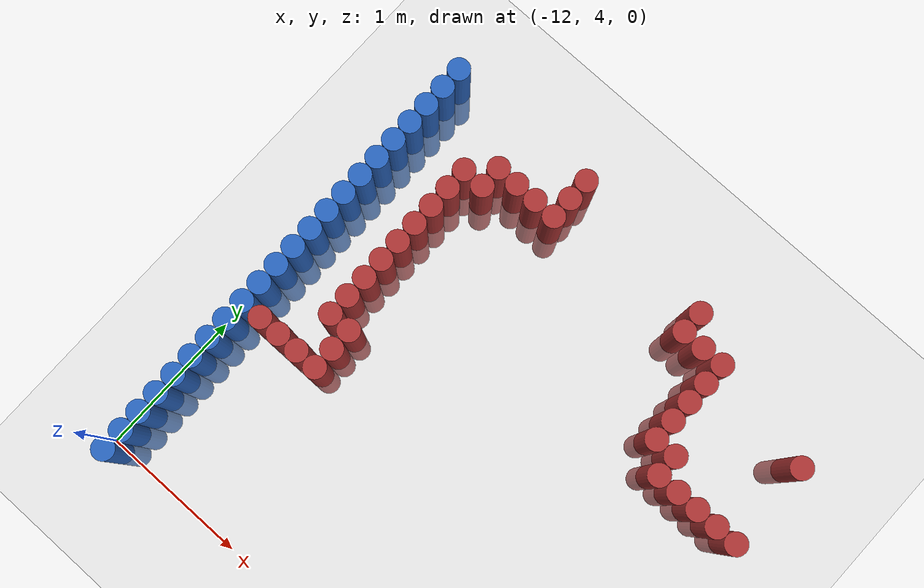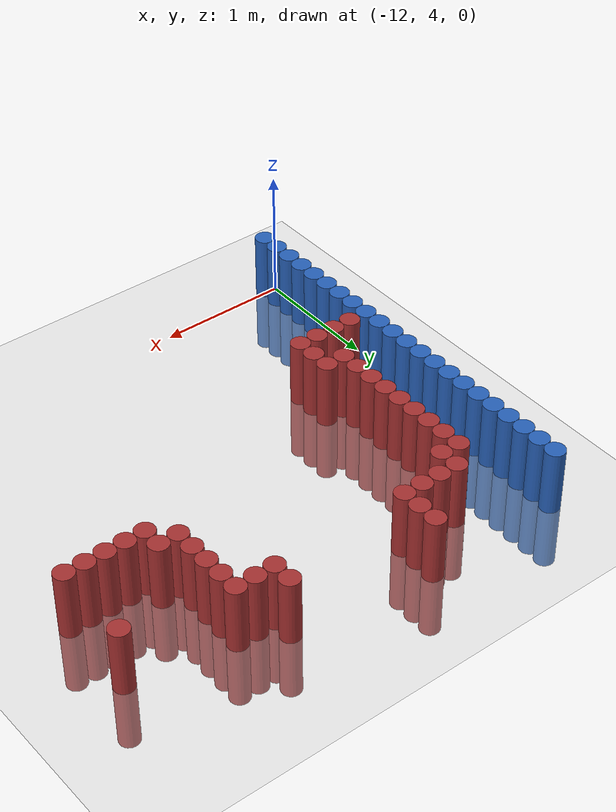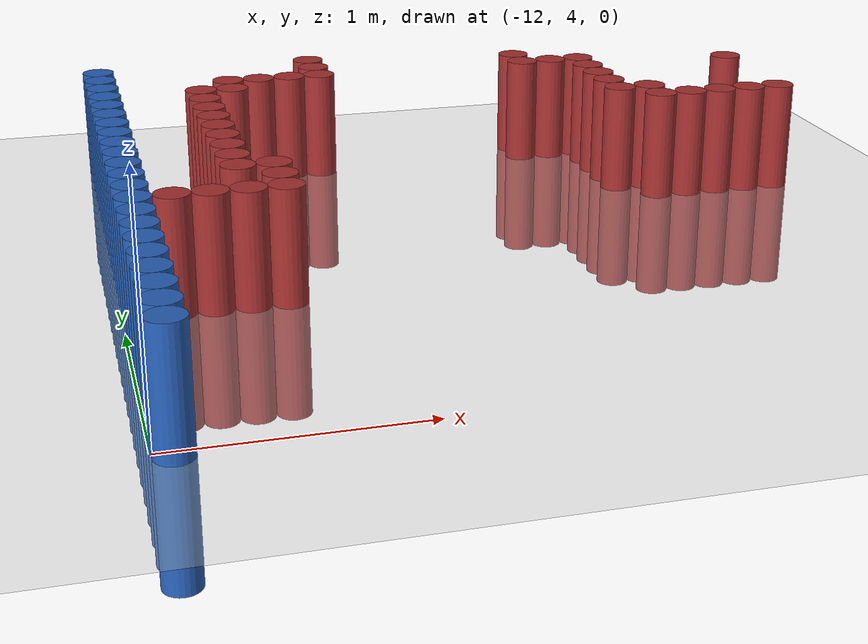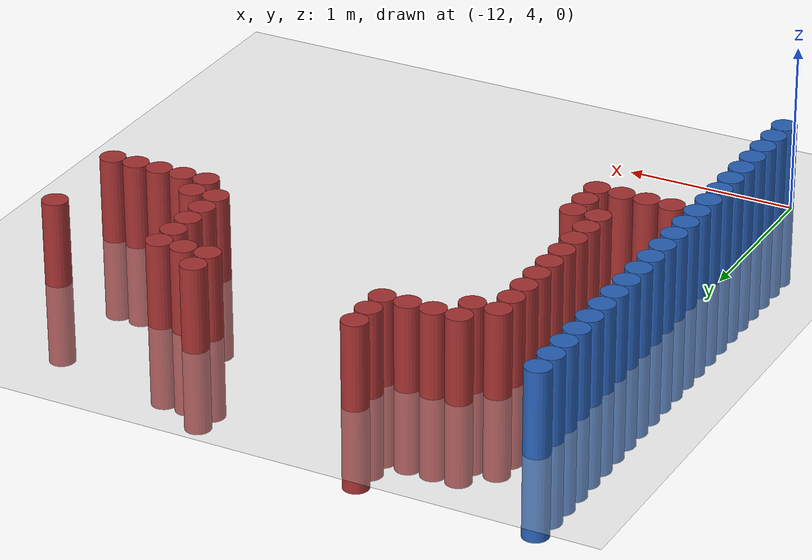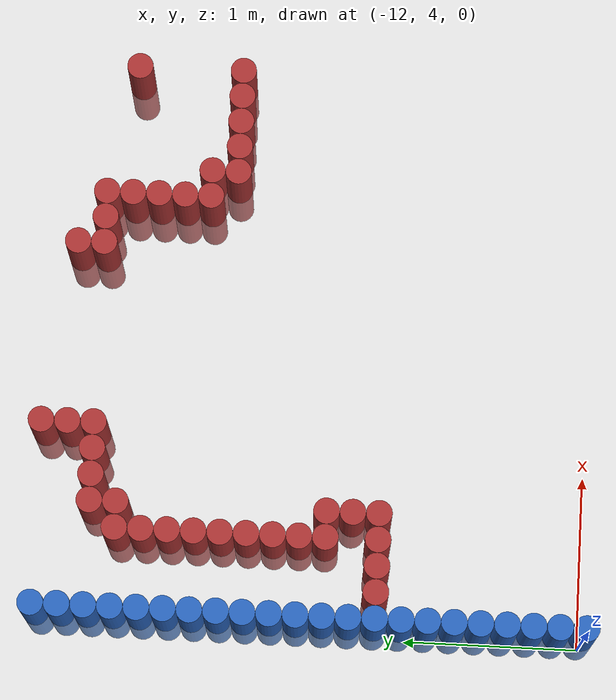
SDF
<sdf version="1.6">
 <world name="default">
  <model name="ground_plane">
   <static>1</static>
   <link name="link">
    <collision name="collision">
     <geometry><plane><normal>0 0 1</normal><size>100 100</size></plane></geometry>
     <surface><friction><ode><mu>100</mu><mu2>50</mu2></ode></friction></surface>
    </collision>
    <visual name="visual">
     <cast_shadows>0</cast_shadows>
     <geometry><plane><normal>0 0 1</normal><size>100 100</size></plane></geometry>
     <material>
      <script><uri>file://media/materials/scripts/gazebo.material</uri><name>Gazebo/Grey</name></script>
     </material>
    </visual>
   </link>
  </model>
  <model name="unit_cylinder_130">
   <static>1</static>
   <pose>-11.925 3.975 0 0 -0 0</pose>
   <link name="link">
    <inertial>
     <mass>1</mass>
     <inertia><ixx>0.145833</ixx><ixy>0</ixy><ixz>0</ixz><iyy>0.145833</iyy><iyz>0</iyz><izz>0.125</izz></inertia>
    </inertial>
    <collision name="collision">
     <geometry><cylinder><radius>0.075</radius><length>1</length></cylinder></geometry>
    </collision>
    <visual name="visual">
     <geometry><cylinder><radius>0.075</radius><length>1</length></cylinder></geometry>
     <material><ambient>0.152 0.379 0.72 1</ambient><diffuse>0.152 0.379 0.72 1</diffuse></material>
     <material>
      <script><name>Gazebo/Grey</name><uri>file://media/materials/scripts/gazebo.material</uri></script>
     </material>
    </visual>
   </link>
  </model>
  <model name="unit_cylinder_132">
   <static>1</static>
   <pose>-11.925 4.125 0 0 -0 0</pose>
   <link name="link">
    <inertial>
     <mass>1</mass>
     <inertia><ixx>0.145833</ixx><ixy>0</ixy><ixz>0</ixz><iyy>0.145833</iyy><iyz>0</iyz><izz>0.125</izz></inertia>
    </inertial>
    <collision name="collision">
     <geometry><cylinder><radius>0.075</radius><length>1</length></cylinder></geometry>
    </collision>
    <visual name="visual">
     <geometry><cylinder><radius>0.075</radius><length>1</length></cylinder></geometry>
     <material><ambient>0.152 0.379 0.72 1</ambient><diffuse>0.152 0.379 0.72 1</diffuse></material>
     <material>
      <script><name>Gazebo/Grey</name><uri>file://media/materials/scripts/gazebo.material</uri></script>
     </material>
    </visual>
   </link>
  </model>
  <model name="unit_cylinder_134">
   <static>1</static>
   <pose>-11.925 4.275 0 0 -0 0</pose>
   <link name="link">
    <inertial>
     <mass>1</mass>
     <inertia><ixx>0.145833</ixx><ixy>0</ixy><ixz>0</ixz><iyy>0.145833</iyy><iyz>0</iyz><izz>0.125</izz></inertia>
    </inertial>
    <collision name="collision">
     <geometry><cylinder><radius>0.075</radius><length>1</length></cylinder></geometry>
    </collision>
    <visual name="visual">
     <geometry><cylinder><radius>0.075</radius><length>1</length></cylinder></geometry>
     <material><ambient>0.152 0.379 0.72 1</ambient><diffuse>0.152 0.379 0.72 1</diffuse></material>
     <material>
      <script><name>Gazebo/Grey</name><uri>file://media/materials/scripts/gazebo.material</uri></script>
     </material>
    </visual>
   </link>
  </model>
  <model name="unit_cylinder_136">
   <static>1</static>
   <pose>-11.925 4.425 0 0 -0 0</pose>
   <link name="link">
    <inertial>
     <mass>1</mass>
     <inertia><ixx>0.145833</ixx><ixy>0</ixy><ixz>0</ixz><iyy>0.145833</iyy><iyz>0</iyz><izz>0.125</izz></inertia>
    </inertial>
    <collision name="collision">
     <geometry><cylinder><radius>0.075</radius><length>1</length></cylinder></geometry>
    </collision>
    <visual name="visual">
     <geometry><cylinder><radius>0.075</radius><length>1</length></cylinder></geometry>
     <material><ambient>0.152 0.379 0.72 1</ambient><diffuse>0.152 0.379 0.72 1</diffuse></material>
     <material>
      <script><name>Gazebo/Grey</name><uri>file://media/materials/scripts/gazebo.material</uri></script>
     </material>
    </visual>
   </link>
  </model>
  <model name="unit_cylinder_138">
   <static>1</static>
   <pose>-11.925 4.575 0 0 -0 0</pose>
   <link name="link">
    <inertial>
     <mass>1</mass>
     <inertia><ixx>0.145833</ixx><ixy>0</ixy><ixz>0</ixz><iyy>0.145833</iyy><iyz>0</iyz><izz>0.125</izz></inertia>
    </inertial>
    <collision name="collision">
     <geometry><cylinder><radius>0.075</radius><length>1</length></cylinder></geometry>
    </collision>
    <visual name="visual">
     <geometry><cylinder><radius>0.075</radius><length>1</length></cylinder></geometry>
     <material><ambient>0.152 0.379 0.72 1</ambient><diffuse>0.152 0.379 0.72 1</diffuse></material>
     <material>
      <script><name>Gazebo/Grey</name><uri>file://media/materials/scripts/gazebo.material</uri></script>
     </material>
    </visual>
   </link>
  </model>
  <model name="unit_cylinder_140">
   <static>1</static>
   <pose>-11.925 4.725 0 0 -0 0</pose>
   <link name="link">
    <inertial>
     <mass>1</mass>
     <inertia><ixx>0.145833</ixx><ixy>0</ixy><ixz>0</ixz><iyy>0.145833</iyy><iyz>0</iyz><izz>0.125</izz></inertia>
    </inertial>
    <collision name="collision">
     <geometry><cylinder><radius>0.075</radius><length>1</length></cylinder></geometry>
    </collision>
    <visual name="visual">
     <geometry><cylinder><radius>0.075</radius><length>1</length></cylinder></geometry>
     <material><ambient>0.152 0.379 0.72 1</ambient><diffuse>0.152 0.379 0.72 1</diffuse></material>
     <material>
      <script><name>Gazebo/Grey</name><uri>file://media/materials/scripts/gazebo.material</uri></script>
     </material>
    </visual>
   </link>
  </model>
  <model name="unit_cylinder_142">
   <static>1</static>
   <pose>-11.925 4.875 0 0 -0 0</pose>
   <link name="link">
    <inertial>
     <mass>1</mass>
     <inertia><ixx>0.145833</ixx><ixy>0</ixy><ixz>0</ixz><iyy>0.145833</iyy><iyz>0</iyz><izz>0.125</izz></inertia>
    </inertial>
    <collision name="collision">
     <geometry><cylinder><radius>0.075</radius><length>1</length></cylinder></geometry>
    </collision>
    <visual name="visual">
     <geometry><cylinder><radius>0.075</radius><length>1</length></cylinder></geometry>
     <material><ambient>0.152 0.379 0.72 1</ambient><diffuse>0.152 0.379 0.72 1</diffuse></material>
     <material>
      <script><name>Gazebo/Grey</name><uri>file://media/materials/scripts/gazebo.material</uri></script>
     </material>
    </visual>
   </link>
  </model>
  <model name="unit_cylinder_144">
   <static>1</static>
   <pose>-11.925 5.025 0 0 -0 0</pose>
   <link name="link">
    <inertial>
     <mass>1</mass>
     <inertia><ixx>0.145833</ixx><ixy>0</ixy><ixz>0</ixz><iyy>0.145833</iyy><iyz>0</iyz><izz>0.125</izz></inertia>
    </inertial>
    <collision name="collision">
     <geometry><cylinder><radius>0.075</radius><length>1</length></cylinder></geometry>
    </collision>
    <visual name="visual">
     <geometry><cylinder><radius>0.075</radius><length>1</length></cylinder></geometry>
     <material><ambient>0.152 0.379 0.72 1</ambient><diffuse>0.152 0.379 0.72 1</diffuse></material>
     <material>
      <script><name>Gazebo/Grey</name><uri>file://media/materials/scripts/gazebo.material</uri></script>
     </material>
    </visual>
   </link>
  </model>
  <model name="unit_cylinder_145">
   <static>1</static>
   <pose>-11.925 5.175 0 0 -0 0</pose>
   <link name="link">
    <inertial>
     <mass>1</mass>
     <inertia><ixx>0.145833</ixx><ixy>0</ixy><ixz>0</ixz><iyy>0.145833</iyy><iyz>0</iyz><izz>0.125</izz></inertia>
    </inertial>
    <collision name="collision">
     <geometry><cylinder><radius>0.075</radius><length>1</length></cylinder></geometry>
    </collision>
    <visual name="visual">
     <geometry><cylinder><radius>0.075</radius><length>1</length></cylinder></geometry>
     <material><ambient>0.152 0.379 0.72 1</ambient><diffuse>0.152 0.379 0.72 1</diffuse></material>
     <material>
      <script><name>Gazebo/Grey</name><uri>file://media/materials/scripts/gazebo.material</uri></script>
     </material>
    </visual>
   </link>
  </model>
  <model name="unit_cylinder_146">
   <static>1</static>
   <pose>-11.925 5.325 0 0 -0 0</pose>
   <link name="link">
    <inertial>
     <mass>1</mass>
     <inertia><ixx>0.145833</ixx><ixy>0</ixy><ixz>0</ixz><iyy>0.145833</iyy><iyz>0</iyz><izz>0.125</izz></inertia>
    </inertial>
    <collision name="collision">
     <geometry><cylinder><radius>0.075</radius><length>1</length></cylinder></geometry>
    </collision>
    <visual name="visual">
     <geometry><cylinder><radius>0.075</radius><length>1</length></cylinder></geometry>
     <material><ambient>0.152 0.379 0.72 1</ambient><diffuse>0.152 0.379 0.72 1</diffuse></material>
     <material>
      <script><name>Gazebo/Grey</name><uri>file://media/materials/scripts/gazebo.material</uri></script>
     </material>
    </visual>
   </link>
  </model>
  <model name="unit_cylinder_147">
   <static>1</static>
   <pose>-11.925 5.475 0 0 -0 0</pose>
   <link name="link">
    <inertial>
     <mass>1</mass>
     <inertia><ixx>0.145833</ixx><ixy>0</ixy><ixz>0</ixz><iyy>0.145833</iyy><iyz>0</iyz><izz>0.125</izz></inertia>
    </inertial>
    <collision name="collision">
     <geometry><cylinder><radius>0.075</radius><length>1</length></cylinder></geometry>
    </collision>
    <visual name="visual">
     <geometry><cylinder><radius>0.075</radius><length>1</length></cylinder></geometry>
     <material><ambient>0.152 0.379 0.72 1</ambient><diffuse>0.152 0.379 0.72 1</diffuse></material>
     <material>
      <script><name>Gazebo/Grey</name><uri>file://media/materials/scripts/gazebo.material</uri></script>
     </material>
    </visual>
   </link>
  </model>
  <model name="unit_cylinder_148">
   <static>1</static>
   <pose>-11.925 5.625 0 0 -0 0</pose>
   <link name="link">
    <inertial>
     <mass>1</mass>
     <inertia><ixx>0.145833</ixx><ixy>0</ixy><ixz>0</ixz><iyy>0.145833</iyy><iyz>0</iyz><izz>0.125</izz></inertia>
    </inertial>
    <collision name="collision">
     <geometry><cylinder><radius>0.075</radius><length>1</length></cylinder></geometry>
    </collision>
    <visual name="visual">
     <geometry><cylinder><radius>0.075</radius><length>1</length></cylinder></geometry>
     <material><ambient>0.152 0.379 0.72 1</ambient><diffuse>0.152 0.379 0.72 1</diffuse></material>
     <material>
      <script><name>Gazebo/Grey</name><uri>file://media/materials/scripts/gazebo.material</uri></script>
     </material>
    </visual>
   </link>
  </model>
  <model name="unit_cylinder_149">
   <static>1</static>
   <pose>-11.925 5.775 0 0 -0 0</pose>
   <link name="link">
    <inertial>
     <mass>1</mass>
     <inertia><ixx>0.145833</ixx><ixy>0</ixy><ixz>0</ixz><iyy>0.145833</iyy><iyz>0</iyz><izz>0.125</izz></inertia>
    </inertial>
    <collision name="collision">
     <geometry><cylinder><radius>0.075</radius><length>1</length></cylinder></geometry>
    </collision>
    <visual name="visual">
     <geometry><cylinder><radius>0.075</radius><length>1</length></cylinder></geometry>
     <material><ambient>0.152 0.379 0.72 1</ambient><diffuse>0.152 0.379 0.72 1</diffuse></material>
     <material>
      <script><name>Gazebo/Grey</name><uri>file://media/materials/scripts/gazebo.material</uri></script>
     </material>
    </visual>
   </link>
  </model>
  <model name="unit_cylinder_150">
   <static>1</static>
   <pose>-11.925 5.925 0 0 -0 0</pose>
   <link name="link">
    <inertial>
     <mass>1</mass>
     <inertia><ixx>0.145833</ixx><ixy>0</ixy><ixz>0</ixz><iyy>0.145833</iyy><iyz>0</iyz><izz>0.125</izz></inertia>
    </inertial>
    <collision name="collision">
     <geometry><cylinder><radius>0.075</radius><length>1</length></cylinder></geometry>
    </collision>
    <visual name="visual">
     <geometry><cylinder><radius>0.075</radius><length>1</length></cylinder></geometry>
     <material><ambient>0.152 0.379 0.72 1</ambient><diffuse>0.152 0.379 0.72 1</diffuse></material>
     <material>
      <script><name>Gazebo/Grey</name><uri>file://media/materials/scripts/gazebo.material</uri></script>
     </material>
    </visual>
   </link>
  </model>
  <model name="unit_cylinder_151">
   <static>1</static>
   <pose>-11.925 6.075 0 0 -0 0</pose>
   <link name="link">
    <inertial>
     <mass>1</mass>
     <inertia><ixx>0.145833</ixx><ixy>0</ixy><ixz>0</ixz><iyy>0.145833</iyy><iyz>0</iyz><izz>0.125</izz></inertia>
    </inertial>
    <collision name="collision">
     <geometry><cylinder><radius>0.075</radius><length>1</length></cylinder></geometry>
    </collision>
    <visual name="visual">
     <geometry><cylinder><radius>0.075</radius><length>1</length></cylinder></geometry>
     <material><ambient>0.152 0.379 0.72 1</ambient><diffuse>0.152 0.379 0.72 1</diffuse></material>
     <material>
      <script><name>Gazebo/Grey</name><uri>file://media/materials/scripts/gazebo.material</uri></script>
     </material>
    </visual>
   </link>
  </model>
  <model name="unit_cylinder_152">
   <static>1</static>
   <pose>-11.925 6.225 0 0 -0 0</pose>
   <link name="link">
    <inertial>
     <mass>1</mass>
     <inertia><ixx>0.145833</ixx><ixy>0</ixy><ixz>0</ixz><iyy>0.145833</iyy><iyz>0</iyz><izz>0.125</izz></inertia>
    </inertial>
    <collision name="collision">
     <geometry><cylinder><radius>0.075</radius><length>1</length></cylinder></geometry>
    </collision>
    <visual name="visual">
     <geometry><cylinder><radius>0.075</radius><length>1</length></cylinder></geometry>
     <material><ambient>0.152 0.379 0.72 1</ambient><diffuse>0.152 0.379 0.72 1</diffuse></material>
     <material>
      <script><name>Gazebo/Grey</name><uri>file://media/materials/scripts/gazebo.material</uri></script>
     </material>
    </visual>
   </link>
  </model>
  <model name="unit_cylinder_153">
   <static>1</static>
   <pose>-11.925 6.375 0 0 -0 0</pose>
   <link name="link">
    <inertial>
     <mass>1</mass>
     <inertia><ixx>0.145833</ixx><ixy>0</ixy><ixz>0</ixz><iyy>0.145833</iyy><iyz>0</iyz><izz>0.125</izz></inertia>
    </inertial>
    <collision name="collision">
     <geometry><cylinder><radius>0.075</radius><length>1</length></cylinder></geometry>
    </collision>
    <visual name="visual">
     <geometry><cylinder><radius>0.075</radius><length>1</length></cylinder></geometry>
     <material><ambient>0.152 0.379 0.72 1</ambient><diffuse>0.152 0.379 0.72 1</diffuse></material>
     <material>
      <script><name>Gazebo/Grey</name><uri>file://media/materials/scripts/gazebo.material</uri></script>
     </material>
    </visual>
   </link>
  </model>
  <model name="unit_cylinder_154">
   <static>1</static>
   <pose>-11.925 6.525 0 0 -0 0</pose>
   <link name="link">
    <inertial>
     <mass>1</mass>
     <inertia><ixx>0.145833</ixx><ixy>0</ixy><ixz>0</ixz><iyy>0.145833</iyy><iyz>0</iyz><izz>0.125</izz></inertia>
    </inertial>
    <collision name="collision">
     <geometry><cylinder><radius>0.075</radius><length>1</length></cylinder></geometry>
    </collision>
    <visual name="visual">
     <geometry><cylinder><radius>0.075</radius><length>1</length></cylinder></geometry>
     <material><ambient>0.152 0.379 0.72 1</ambient><diffuse>0.152 0.379 0.72 1</diffuse></material>
     <material>
      <script><name>Gazebo/Grey</name><uri>file://media/materials/scripts/gazebo.material</uri></script>
     </material>
    </visual>
   </link>
  </model>
  <model name="unit_cylinder_155">
   <static>1</static>
   <pose>-11.925 6.675 0 0 -0 0</pose>
   <link name="link">
    <inertial>
     <mass>1</mass>
     <inertia><ixx>0.145833</ixx><ixy>0</ixy><ixz>0</ixz><iyy>0.145833</iyy><iyz>0</iyz><izz>0.125</izz></inertia>
    </inertial>
    <collision name="collision">
     <geometry><cylinder><radius>0.075</radius><length>1</length></cylinder></geometry>
    </collision>
    <visual name="visual">
     <geometry><cylinder><radius>0.075</radius><length>1</length></cylinder></geometry>
     <material><ambient>0.152 0.379 0.72 1</ambient><diffuse>0.152 0.379 0.72 1</diffuse></material>
     <material>
      <script><name>Gazebo/Grey</name><uri>file://media/materials/scripts/gazebo.material</uri></script>
     </material>
    </visual>
   </link>
  </model>
  <model name="unit_cylinder_156">
   <static>1</static>
   <pose>-11.925 6.825 0 0 -0 0</pose>
   <link name="link">
    <inertial>
     <mass>1</mass>
     <inertia><ixx>0.145833</ixx><ixy>0</ixy><ixz>0</ixz><iyy>0.145833</iyy><iyz>0</iyz><izz>0.125</izz></inertia>
    </inertial>
    <collision name="collision">
     <geometry><cylinder><radius>0.075</radius><length>1</length></cylinder></geometry>
    </collision>
    <visual name="visual">
     <geometry><cylinder><radius>0.075</radius><length>1</length></cylinder></geometry>
     <material><ambient>0.152 0.379 0.72 1</ambient><diffuse>0.152 0.379 0.72 1</diffuse></material>
     <material>
      <script><name>Gazebo/Grey</name><uri>file://media/materials/scripts/gazebo.material</uri></script>
     </material>
    </visual>
   </link>
  </model>
  <model name="unit_cylinder_157">
   <static>1</static>
   <pose>-11.925 6.975 0 0 -0 0</pose>
   <link name="link">
    <inertial>
     <mass>1</mass>
     <inertia><ixx>0.145833</ixx><ixy>0</ixy><ixz>0</ixz><iyy>0.145833</iyy><iyz>0</iyz><izz>0.125</izz></inertia>
    </inertial>
    <collision name="collision">
     <geometry><cylinder><radius>0.075</radius><length>1</length></cylinder></geometry>
    </collision>
    <visual name="visual">
     <geometry><cylinder><radius>0.075</radius><length>1</length></cylinder></geometry>
     <material><ambient>0.152 0.379 0.72 1</ambient><diffuse>0.152 0.379 0.72 1</diffuse></material>
     <material>
      <script><name>Gazebo/Grey</name><uri>file://media/materials/scripts/gazebo.material</uri></script>
     </material>
    </visual>
   </link>
  </model>
  <model name="unit_cylinder_158">
   <static>1</static>
   <pose>-11.925 7.125 0 0 -0 0</pose>
   <link name="link">
    <inertial>
     <mass>1</mass>
     <inertia><ixx>0.145833</ixx><ixy>0</ixy><ixz>0</ixz><iyy>0.145833</iyy><iyz>0</iyz><izz>0.125</izz></inertia>
    </inertial>
    <collision name="collision">
     <geometry><cylinder><radius>0.075</radius><length>1</length></cylinder></geometry>
    </collision>
    <visual name="visual">
     <geometry><cylinder><radius>0.075</radius><length>1</length></cylinder></geometry>
     <material><ambient>0.152 0.379 0.72 1</ambient><diffuse>0.152 0.379 0.72 1</diffuse></material>
     <material>
      <script><name>Gazebo/Grey</name><uri>file://media/materials/scripts/gazebo.material</uri></script>
     </material>
    </visual>
   </link>
  </model>
  <model name="unit_cylinder_225">
   <static>1</static>
   <pose>-11.775 5.175 0 0 -0 0</pose>
   <link name="link">
    <inertial>
     <mass>1</mass>
     <inertia><ixx>0.145833</ixx><ixy>0</ixy><ixz>0</ixz><iyy>0.145833</iyy><iyz>0</iyz><izz>0.125</izz></inertia>
    </inertial>
    <collision name="collision">
     <geometry><cylinder><radius>0.075</radius><length>1</length></cylinder></geometry>
    </collision>
    <visual name="visual">
     <geometry><cylinder><radius>0.075</radius><length>1</length></cylinder></geometry>
     <material><ambient>0.648 0.192 0.192 1</ambient><diffuse>0.648 0.192 0.192 1</diffuse></material>
     <material>
      <script><name>Gazebo/Grey</name><uri>file://media/materials/scripts/gazebo.material</uri></script>
     </material>
    </visual>
   </link>
  </model>
  <model name="unit_cylinder_227">
   <static>1</static>
   <pose>-11.625 5.175 0 0 -0 0</pose>
   <link name="link">
    <inertial>
     <mass>1</mass>
     <inertia><ixx>0.145833</ixx><ixy>0</ixy><ixz>0</ixz><iyy>0.145833</iyy><iyz>0</iyz><izz>0.125</izz></inertia>
    </inertial>
    <collision name="collision">
     <geometry><cylinder><radius>0.075</radius><length>1</length></cylinder></geometry>
    </collision>
    <visual name="visual">
     <geometry><cylinder><radius>0.075</radius><length>1</length></cylinder></geometry>
     <material><ambient>0.648 0.192 0.192 1</ambient><diffuse>0.648 0.192 0.192 1</diffuse></material>
     <material>
      <script><name>Gazebo/Grey</name><uri>file://media/materials/scripts/gazebo.material</uri></script>
     </material>
    </visual>
   </link>
  </model>
  <model name="unit_cylinder_240">
   <static>1</static>
   <pose>-11.475 5.175 0 0 -0 0</pose>
   <link name="link">
    <inertial>
     <mass>1</mass>
     <inertia><ixx>0.145833</ixx><ixy>0</ixy><ixz>0</ixz><iyy>0.145833</iyy><iyz>0</iyz><izz>0.125</izz></inertia>
    </inertial>
    <collision name="collision">
     <geometry><cylinder><radius>0.075</radius><length>1</length></cylinder></geometry>
    </collision>
    <visual name="visual">
     <geometry><cylinder><radius>0.075</radius><length>1</length></cylinder></geometry>
     <material><ambient>0.648 0.192 0.192 1</ambient><diffuse>0.648 0.192 0.192 1</diffuse></material>
     <material>
      <script><name>Gazebo/Grey</name><uri>file://media/materials/scripts/gazebo.material</uri></script>
     </material>
    </visual>
   </link>
  </model>
  <model name="unit_cylinder_241">
   <static>1</static>
   <pose>-11.475 5.475 0 0 -0 0</pose>
   <link name="link">
    <inertial>
     <mass>1</mass>
     <inertia><ixx>0.145833</ixx><ixy>0</ixy><ixz>0</ixz><iyy>0.145833</iyy><iyz>0</iyz><izz>0.125</izz></inertia>
    </inertial>
    <collision name="collision">
     <geometry><cylinder><radius>0.075</radius><length>1</length></cylinder></geometry>
    </collision>
    <visual name="visual">
     <geometry><cylinder><radius>0.075</radius><length>1</length></cylinder></geometry>
     <material><ambient>0.648 0.192 0.192 1</ambient><diffuse>0.648 0.192 0.192 1</diffuse></material>
     <material>
      <script><name>Gazebo/Grey</name><uri>file://media/materials/scripts/gazebo.material</uri></script>
     </material>
    </visual>
   </link>
  </model>
  <model name="unit_cylinder_242">
   <static>1</static>
   <pose>-11.475 5.625 0 0 -0 0</pose>
   <link name="link">
    <inertial>
     <mass>1</mass>
     <inertia><ixx>0.145833</ixx><ixy>0</ixy><ixz>0</ixz><iyy>0.145833</iyy><iyz>0</iyz><izz>0.125</izz></inertia>
    </inertial>
    <collision name="collision">
     <geometry><cylinder><radius>0.075</radius><length>1</length></cylinder></geometry>
    </collision>
    <visual name="visual">
     <geometry><cylinder><radius>0.075</radius><length>1</length></cylinder></geometry>
     <material><ambient>0.648 0.192 0.192 1</ambient><diffuse>0.648 0.192 0.192 1</diffuse></material>
     <material>
      <script><name>Gazebo/Grey</name><uri>file://media/materials/scripts/gazebo.material</uri></script>
     </material>
    </visual>
   </link>
  </model>
  <model name="unit_cylinder_243">
   <static>1</static>
   <pose>-11.475 5.775 0 0 -0 0</pose>
   <link name="link">
    <inertial>
     <mass>1</mass>
     <inertia><ixx>0.145833</ixx><ixy>0</ixy><ixz>0</ixz><iyy>0.145833</iyy><iyz>0</iyz><izz>0.125</izz></inertia>
    </inertial>
    <collision name="collision">
     <geometry><cylinder><radius>0.075</radius><length>1</length></cylinder></geometry>
    </collision>
    <visual name="visual">
     <geometry><cylinder><radius>0.075</radius><length>1</length></cylinder></geometry>
     <material><ambient>0.648 0.192 0.192 1</ambient><diffuse>0.648 0.192 0.192 1</diffuse></material>
     <material>
      <script><name>Gazebo/Grey</name><uri>file://media/materials/scripts/gazebo.material</uri></script>
     </material>
    </visual>
   </link>
  </model>
  <model name="unit_cylinder_244">
   <static>1</static>
   <pose>-11.475 5.925 0 0 -0 0</pose>
   <link name="link">
    <inertial>
     <mass>1</mass>
     <inertia><ixx>0.145833</ixx><ixy>0</ixy><ixz>0</ixz><iyy>0.145833</iyy><iyz>0</iyz><izz>0.125</izz></inertia>
    </inertial>
    <collision name="collision">
     <geometry><cylinder><radius>0.075</radius><length>1</length></cylinder></geometry>
    </collision>
    <visual name="visual">
     <geometry><cylinder><radius>0.075</radius><length>1</length></cylinder></geometry>
     <material><ambient>0.648 0.192 0.192 1</ambient><diffuse>0.648 0.192 0.192 1</diffuse></material>
     <material>
      <script><name>Gazebo/Grey</name><uri>file://media/materials/scripts/gazebo.material</uri></script>
     </material>
    </visual>
   </link>
  </model>
  <model name="unit_cylinder_245">
   <static>1</static>
   <pose>-11.475 6.075 0 0 -0 0</pose>
   <link name="link">
    <inertial>
     <mass>1</mass>
     <inertia><ixx>0.145833</ixx><ixy>0</ixy><ixz>0</ixz><iyy>0.145833</iyy><iyz>0</iyz><izz>0.125</izz></inertia>
    </inertial>
    <collision name="collision">
     <geometry><cylinder><radius>0.075</radius><length>1</length></cylinder></geometry>
    </collision>
    <visual name="visual">
     <geometry><cylinder><radius>0.075</radius><length>1</length></cylinder></geometry>
     <material><ambient>0.648 0.192 0.192 1</ambient><diffuse>0.648 0.192 0.192 1</diffuse></material>
     <material>
      <script><name>Gazebo/Grey</name><uri>file://media/materials/scripts/gazebo.material</uri></script>
     </material>
    </visual>
   </link>
  </model>
  <model name="unit_cylinder_246">
   <static>1</static>
   <pose>-11.475 6.225 0 0 -0 0</pose>
   <link name="link">
    <inertial>
     <mass>1</mass>
     <inertia><ixx>0.145833</ixx><ixy>0</ixy><ixz>0</ixz><iyy>0.145833</iyy><iyz>0</iyz><izz>0.125</izz></inertia>
    </inertial>
    <collision name="collision">
     <geometry><cylinder><radius>0.075</radius><length>1</length></cylinder></geometry>
    </collision>
    <visual name="visual">
     <geometry><cylinder><radius>0.075</radius><length>1</length></cylinder></geometry>
     <material><ambient>0.648 0.192 0.192 1</ambient><diffuse>0.648 0.192 0.192 1</diffuse></material>
     <material>
      <script><name>Gazebo/Grey</name><uri>file://media/materials/scripts/gazebo.material</uri></script>
     </material>
    </visual>
   </link>
  </model>
  <model name="unit_cylinder_247">
   <static>1</static>
   <pose>-11.475 6.375 0 0 -0 0</pose>
   <link name="link">
    <inertial>
     <mass>1</mass>
     <inertia><ixx>0.145833</ixx><ixy>0</ixy><ixz>0</ixz><iyy>0.145833</iyy><iyz>0</iyz><izz>0.125</izz></inertia>
    </inertial>
    <collision name="collision">
     <geometry><cylinder><radius>0.075</radius><length>1</length></cylinder></geometry>
    </collision>
    <visual name="visual">
     <geometry><cylinder><radius>0.075</radius><length>1</length></cylinder></geometry>
     <material><ambient>0.648 0.192 0.192 1</ambient><diffuse>0.648 0.192 0.192 1</diffuse></material>
     <material>
      <script><name>Gazebo/Grey</name><uri>file://media/materials/scripts/gazebo.material</uri></script>
     </material>
    </visual>
   </link>
  </model>
  <model name="unit_cylinder_248">
   <static>1</static>
   <pose>-11.475 6.525 0 0 -0 0</pose>
   <link name="link">
    <inertial>
     <mass>1</mass>
     <inertia><ixx>0.145833</ixx><ixy>0</ixy><ixz>0</ixz><iyy>0.145833</iyy><iyz>0</iyz><izz>0.125</izz></inertia>
    </inertial>
    <collision name="collision">
     <geometry><cylinder><radius>0.075</radius><length>1</length></cylinder></geometry>
    </collision>
    <visual name="visual">
     <geometry><cylinder><radius>0.075</radius><length>1</length></cylinder></geometry>
     <material><ambient>0.648 0.192 0.192 1</ambient><diffuse>0.648 0.192 0.192 1</diffuse></material>
     <material>
      <script><name>Gazebo/Grey</name><uri>file://media/materials/scripts/gazebo.material</uri></script>
     </material>
    </visual>
   </link>
  </model>
  <model name="unit_cylinder_249">
   <static>1</static>
   <pose>-11.475 6.675 0 0 -0 0</pose>
   <link name="link">
    <inertial>
     <mass>1</mass>
     <inertia><ixx>0.145833</ixx><ixy>0</ixy><ixz>0</ixz><iyy>0.145833</iyy><iyz>0</iyz><izz>0.125</izz></inertia>
    </inertial>
    <collision name="collision">
     <geometry><cylinder><radius>0.075</radius><length>1</length></cylinder></geometry>
    </collision>
    <visual name="visual">
     <geometry><cylinder><radius>0.075</radius><length>1</length></cylinder></geometry>
     <material><ambient>0.648 0.192 0.192 1</ambient><diffuse>0.648 0.192 0.192 1</diffuse></material>
     <material>
      <script><name>Gazebo/Grey</name><uri>file://media/materials/scripts/gazebo.material</uri></script>
     </material>
    </visual>
   </link>
  </model>
  <model name="unit_cylinder_274">
   <static>1</static>
   <pose>-11.325 5.175 0 0 -0 0</pose>
   <link name="link">
    <inertial>
     <mass>1</mass>
     <inertia><ixx>0.145833</ixx><ixy>0</ixy><ixz>0</ixz><iyy>0.145833</iyy><iyz>0</iyz><izz>0.125</izz></inertia>
    </inertial>
    <collision name="collision">
     <geometry><cylinder><radius>0.075</radius><length>1</length></cylinder></geometry>
    </collision>
    <visual name="visual">
     <geometry><cylinder><radius>0.075</radius><length>1</length></cylinder></geometry>
     <material><ambient>0.648 0.192 0.192 1</ambient><diffuse>0.648 0.192 0.192 1</diffuse></material>
     <material>
      <script><name>Gazebo/Grey</name><uri>file://media/materials/scripts/gazebo.material</uri></script>
     </material>
    </visual>
   </link>
  </model>
  <model name="unit_cylinder_275">
   <static>1</static>
   <pose>-11.325 5.325 0 0 -0 0</pose>
   <link name="link">
    <inertial>
     <mass>1</mass>
     <inertia><ixx>0.145833</ixx><ixy>0</ixy><ixz>0</ixz><iyy>0.145833</iyy><iyz>0</iyz><izz>0.125</izz></inertia>
    </inertial>
    <collision name="collision">
     <geometry><cylinder><radius>0.075</radius><length>1</length></cylinder></geometry>
    </collision>
    <visual name="visual">
     <geometry><cylinder><radius>0.075</radius><length>1</length></cylinder></geometry>
     <material><ambient>0.648 0.192 0.192 1</ambient><diffuse>0.648 0.192 0.192 1</diffuse></material>
     <material>
      <script><name>Gazebo/Grey</name><uri>file://media/materials/scripts/gazebo.material</uri></script>
     </material>
    </visual>
   </link>
  </model>
  <model name="unit_cylinder_276">
   <static>1</static>
   <pose>-11.325 5.475 0 0 -0 0</pose>
   <link name="link">
    <inertial>
     <mass>1</mass>
     <inertia><ixx>0.145833</ixx><ixy>0</ixy><ixz>0</ixz><iyy>0.145833</iyy><iyz>0</iyz><izz>0.125</izz></inertia>
    </inertial>
    <collision name="collision">
     <geometry><cylinder><radius>0.075</radius><length>1</length></cylinder></geometry>
    </collision>
    <visual name="visual">
     <geometry><cylinder><radius>0.075</radius><length>1</length></cylinder></geometry>
     <material><ambient>0.648 0.192 0.192 1</ambient><diffuse>0.648 0.192 0.192 1</diffuse></material>
     <material>
      <script><name>Gazebo/Grey</name><uri>file://media/materials/scripts/gazebo.material</uri></script>
     </material>
    </visual>
   </link>
  </model>
  <model name="unit_cylinder_277">
   <static>1</static>
   <pose>-11.325 6.675 0 0 -0 0</pose>
   <link name="link">
    <inertial>
     <mass>1</mass>
     <inertia><ixx>0.145833</ixx><ixy>0</ixy><ixz>0</ixz><iyy>0.145833</iyy><iyz>0</iyz><izz>0.125</izz></inertia>
    </inertial>
    <collision name="collision">
     <geometry><cylinder><radius>0.075</radius><length>1</length></cylinder></geometry>
    </collision>
    <visual name="visual">
     <geometry><cylinder><radius>0.075</radius><length>1</length></cylinder></geometry>
     <material><ambient>0.648 0.192 0.192 1</ambient><diffuse>0.648 0.192 0.192 1</diffuse></material>
     <material>
      <script><name>Gazebo/Grey</name><uri>file://media/materials/scripts/gazebo.material</uri></script>
     </material>
    </visual>
   </link>
  </model>
  <model name="unit_cylinder_278">
   <static>1</static>
   <pose>-11.325 6.825 0 0 -0 0</pose>
   <link name="link">
    <inertial>
     <mass>1</mass>
     <inertia><ixx>0.145833</ixx><ixy>0</ixy><ixz>0</ixz><iyy>0.145833</iyy><iyz>0</iyz><izz>0.125</izz></inertia>
    </inertial>
    <collision name="collision">
     <geometry><cylinder><radius>0.075</radius><length>1</length></cylinder></geometry>
    </collision>
    <visual name="visual">
     <geometry><cylinder><radius>0.075</radius><length>1</length></cylinder></geometry>
     <material><ambient>0.648 0.192 0.192 1</ambient><diffuse>0.648 0.192 0.192 1</diffuse></material>
     <material>
      <script><name>Gazebo/Grey</name><uri>file://media/materials/scripts/gazebo.material</uri></script>
     </material>
    </visual>
   </link>
  </model>
  <model name="unit_cylinder_293">
   <static>1</static>
   <pose>-11.175 6.825 0 0 -0 0</pose>
   <link name="link">
    <inertial>
     <mass>1</mass>
     <inertia><ixx>0.145833</ixx><ixy>0</ixy><ixz>0</ixz><iyy>0.145833</iyy><iyz>0</iyz><izz>0.125</izz></inertia>
    </inertial>
    <collision name="collision">
     <geometry><cylinder><radius>0.075</radius><length>1</length></cylinder></geometry>
    </collision>
    <visual name="visual">
     <geometry><cylinder><radius>0.075</radius><length>1</length></cylinder></geometry>
     <material><ambient>0.648 0.192 0.192 1</ambient><diffuse>0.648 0.192 0.192 1</diffuse></material>
     <material>
      <script><name>Gazebo/Grey</name><uri>file://media/materials/scripts/gazebo.material</uri></script>
     </material>
    </visual>
   </link>
  </model>
  <model name="unit_cylinder_305">
   <static>1</static>
   <pose>-11.025 6.825 0 0 -0 0</pose>
   <link name="link">
    <inertial>
     <mass>1</mass>
     <inertia><ixx>0.145833</ixx><ixy>0</ixy><ixz>0</ixz><iyy>0.145833</iyy><iyz>0</iyz><izz>0.125</izz></inertia>
    </inertial>
    <collision name="collision">
     <geometry><cylinder><radius>0.075</radius><length>1</length></cylinder></geometry>
    </collision>
    <visual name="visual">
     <geometry><cylinder><radius>0.075</radius><length>1</length></cylinder></geometry>
     <material><ambient>0.648 0.192 0.192 1</ambient><diffuse>0.648 0.192 0.192 1</diffuse></material>
     <material>
      <script><name>Gazebo/Grey</name><uri>file://media/materials/scripts/gazebo.material</uri></script>
     </material>
    </visual>
   </link>
  </model>
  <model name="unit_cylinder_311">
   <static>1</static>
   <pose>-10.875 6.825 0 0 -0 0</pose>
   <link name="link">
    <inertial>
     <mass>1</mass>
     <inertia><ixx>0.145833</ixx><ixy>0</ixy><ixz>0</ixz><iyy>0.145833</iyy><iyz>0</iyz><izz>0.125</izz></inertia>
    </inertial>
    <collision name="collision">
     <geometry><cylinder><radius>0.075</radius><length>1</length></cylinder></geometry>
    </collision>
    <visual name="visual">
     <geometry><cylinder><radius>0.075</radius><length>1</length></cylinder></geometry>
     <material><ambient>0.648 0.192 0.192 1</ambient><diffuse>0.648 0.192 0.192 1</diffuse></material>
     <material>
      <script><name>Gazebo/Grey</name><uri>file://media/materials/scripts/gazebo.material</uri></script>
     </material>
    </visual>
   </link>
  </model>
  <model name="unit_cylinder_312">
   <static>1</static>
   <pose>-10.875 6.975 0 0 -0 0</pose>
   <link name="link">
    <inertial>
     <mass>1</mass>
     <inertia><ixx>0.145833</ixx><ixy>0</ixy><ixz>0</ixz><iyy>0.145833</iyy><iyz>0</iyz><izz>0.125</izz></inertia>
    </inertial>
    <collision name="collision">
     <geometry><cylinder><radius>0.075</radius><length>1</length></cylinder></geometry>
    </collision>
    <visual name="visual">
     <geometry><cylinder><radius>0.075</radius><length>1</length></cylinder></geometry>
     <material><ambient>0.648 0.192 0.192 1</ambient><diffuse>0.648 0.192 0.192 1</diffuse></material>
     <material>
      <script><name>Gazebo/Grey</name><uri>file://media/materials/scripts/gazebo.material</uri></script>
     </material>
    </visual>
   </link>
  </model>
  <model name="unit_cylinder_313">
   <static>1</static>
   <pose>-10.875 7.125 0 0 -0 0</pose>
   <link name="link">
    <inertial>
     <mass>1</mass>
     <inertia><ixx>0.145833</ixx><ixy>0</ixy><ixz>0</ixz><iyy>0.145833</iyy><iyz>0</iyz><izz>0.125</izz></inertia>
    </inertial>
    <collision name="collision">
     <geometry><cylinder><radius>0.075</radius><length>1</length></cylinder></geometry>
    </collision>
    <visual name="visual">
     <geometry><cylinder><radius>0.075</radius><length>1</length></cylinder></geometry>
     <material><ambient>0.648 0.192 0.192 1</ambient><diffuse>0.648 0.192 0.192 1</diffuse></material>
     <material>
      <script><name>Gazebo/Grey</name><uri>file://media/materials/scripts/gazebo.material</uri></script>
     </material>
    </visual>
   </link>
  </model>
  <model name="unit_cylinder_430">
   <static>1</static>
   <pose>-9.825 6.825 0 0 -0 0</pose>
   <link name="link">
    <inertial>
     <mass>1</mass>
     <inertia><ixx>0.145833</ixx><ixy>0</ixy><ixz>0</ixz><iyy>0.145833</iyy><iyz>0</iyz><izz>0.125</izz></inertia>
    </inertial>
    <collision name="collision">
     <geometry><cylinder><radius>0.075</radius><length>1</length></cylinder></geometry>
    </collision>
    <visual name="visual">
     <geometry><cylinder><radius>0.075</radius><length>1</length></cylinder></geometry>
     <material><ambient>0.648 0.192 0.192 1</ambient><diffuse>0.648 0.192 0.192 1</diffuse></material>
     <material>
      <script><name>Gazebo/Grey</name><uri>file://media/materials/scripts/gazebo.material</uri></script>
     </material>
    </visual>
   </link>
  </model>
  <model name="unit_cylinder_431">
   <static>1</static>
   <pose>-9.825 6.975 0 0 -0 0</pose>
   <link name="link">
    <inertial>
     <mass>1</mass>
     <inertia><ixx>0.145833</ixx><ixy>0</ixy><ixz>0</ixz><iyy>0.145833</iyy><iyz>0</iyz><izz>0.125</izz></inertia>
    </inertial>
    <collision name="collision">
     <geometry><cylinder><radius>0.075</radius><length>1</length></cylinder></geometry>
    </collision>
    <visual name="visual">
     <geometry><cylinder><radius>0.075</radius><length>1</length></cylinder></geometry>
     <material><ambient>0.648 0.192 0.192 1</ambient><diffuse>0.648 0.192 0.192 1</diffuse></material>
     <material>
      <script><name>Gazebo/Grey</name><uri>file://media/materials/scripts/gazebo.material</uri></script>
     </material>
    </visual>
   </link>
  </model>
  <model name="unit_cylinder_456">
   <static>1</static>
   <pose>-9.675 6.825 0 0 -0 0</pose>
   <link name="link">
    <inertial>
     <mass>1</mass>
     <inertia><ixx>0.145833</ixx><ixy>0</ixy><ixz>0</ixz><iyy>0.145833</iyy><iyz>0</iyz><izz>0.125</izz></inertia>
    </inertial>
    <collision name="collision">
     <geometry><cylinder><radius>0.075</radius><length>1</length></cylinder></geometry>
    </collision>
    <visual name="visual">
     <geometry><cylinder><radius>0.075</radius><length>1</length></cylinder></geometry>
     <material><ambient>0.648 0.192 0.192 1</ambient><diffuse>0.648 0.192 0.192 1</diffuse></material>
     <material>
      <script><name>Gazebo/Grey</name><uri>file://media/materials/scripts/gazebo.material</uri></script>
     </material>
    </visual>
   </link>
  </model>
  <model name="unit_cylinder_470">
   <static>1</static>
   <pose>-9.525 6.225 0 0 -0 0</pose>
   <link name="link">
    <inertial>
     <mass>1</mass>
     <inertia><ixx>0.145833</ixx><ixy>0</ixy><ixz>0</ixz><iyy>0.145833</iyy><iyz>0</iyz><izz>0.125</izz></inertia>
    </inertial>
    <collision name="collision">
     <geometry><cylinder><radius>0.075</radius><length>1</length></cylinder></geometry>
    </collision>
    <visual name="visual">
     <geometry><cylinder><radius>0.075</radius><length>1</length></cylinder></geometry>
     <material><ambient>0.648 0.192 0.192 1</ambient><diffuse>0.648 0.192 0.192 1</diffuse></material>
     <material>
      <script><name>Gazebo/Grey</name><uri>file://media/materials/scripts/gazebo.material</uri></script>
     </material>
    </visual>
   </link>
  </model>
  <model name="unit_cylinder_471">
   <static>1</static>
   <pose>-9.525 6.375 0 0 -0 0</pose>
   <link name="link">
    <inertial>
     <mass>1</mass>
     <inertia><ixx>0.145833</ixx><ixy>0</ixy><ixz>0</ixz><iyy>0.145833</iyy><iyz>0</iyz><izz>0.125</izz></inertia>
    </inertial>
    <collision name="collision">
     <geometry><cylinder><radius>0.075</radius><length>1</length></cylinder></geometry>
    </collision>
    <visual name="visual">
     <geometry><cylinder><radius>0.075</radius><length>1</length></cylinder></geometry>
     <material><ambient>0.648 0.192 0.192 1</ambient><diffuse>0.648 0.192 0.192 1</diffuse></material>
     <material>
      <script><name>Gazebo/Grey</name><uri>file://media/materials/scripts/gazebo.material</uri></script>
     </material>
    </visual>
   </link>
  </model>
  <model name="unit_cylinder_472">
   <static>1</static>
   <pose>-9.525 6.525 0 0 -0 0</pose>
   <link name="link">
    <inertial>
     <mass>1</mass>
     <inertia><ixx>0.145833</ixx><ixy>0</ixy><ixz>0</ixz><iyy>0.145833</iyy><iyz>0</iyz><izz>0.125</izz></inertia>
    </inertial>
    <collision name="collision">
     <geometry><cylinder><radius>0.075</radius><length>1</length></cylinder></geometry>
    </collision>
    <visual name="visual">
     <geometry><cylinder><radius>0.075</radius><length>1</length></cylinder></geometry>
     <material><ambient>0.648 0.192 0.192 1</ambient><diffuse>0.648 0.192 0.192 1</diffuse></material>
     <material>
      <script><name>Gazebo/Grey</name><uri>file://media/materials/scripts/gazebo.material</uri></script>
     </material>
    </visual>
   </link>
  </model>
  <model name="unit_cylinder_473">
   <static>1</static>
   <pose>-9.525 6.675 0 0 -0 0</pose>
   <link name="link">
    <inertial>
     <mass>1</mass>
     <inertia><ixx>0.145833</ixx><ixy>0</ixy><ixz>0</ixz><iyy>0.145833</iyy><iyz>0</iyz><izz>0.125</izz></inertia>
    </inertial>
    <collision name="collision">
     <geometry><cylinder><radius>0.075</radius><length>1</length></cylinder></geometry>
    </collision>
    <visual name="visual">
     <geometry><cylinder><radius>0.075</radius><length>1</length></cylinder></geometry>
     <material><ambient>0.648 0.192 0.192 1</ambient><diffuse>0.648 0.192 0.192 1</diffuse></material>
     <material>
      <script><name>Gazebo/Grey</name><uri>file://media/materials/scripts/gazebo.material</uri></script>
     </material>
    </visual>
   </link>
  </model>
  <model name="unit_cylinder_474">
   <static>1</static>
   <pose>-9.525 6.825 0 0 -0 0</pose>
   <link name="link">
    <inertial>
     <mass>1</mass>
     <inertia><ixx>0.145833</ixx><ixy>0</ixy><ixz>0</ixz><iyy>0.145833</iyy><iyz>0</iyz><izz>0.125</izz></inertia>
    </inertial>
    <collision name="collision">
     <geometry><cylinder><radius>0.075</radius><length>1</length></cylinder></geometry>
    </collision>
    <visual name="visual">
     <geometry><cylinder><radius>0.075</radius><length>1</length></cylinder></geometry>
     <material><ambient>0.648 0.192 0.192 1</ambient><diffuse>0.648 0.192 0.192 1</diffuse></material>
     <material>
      <script><name>Gazebo/Grey</name><uri>file://media/materials/scripts/gazebo.material</uri></script>
     </material>
    </visual>
   </link>
  </model>
  <model name="unit_cylinder_489">
   <static>1</static>
   <pose>-9.375 6.075 0 0 -0 0</pose>
   <link name="link">
    <inertial>
     <mass>1</mass>
     <inertia><ixx>0.145833</ixx><ixy>0</ixy><ixz>0</ixz><iyy>0.145833</iyy><iyz>0</iyz><izz>0.125</izz></inertia>
    </inertial>
    <collision name="collision">
     <geometry><cylinder><radius>0.075</radius><length>1</length></cylinder></geometry>
    </collision>
    <visual name="visual">
     <geometry><cylinder><radius>0.075</radius><length>1</length></cylinder></geometry>
     <material><ambient>0.648 0.192 0.192 1</ambient><diffuse>0.648 0.192 0.192 1</diffuse></material>
     <material>
      <script><name>Gazebo/Grey</name><uri>file://media/materials/scripts/gazebo.material</uri></script>
     </material>
    </visual>
   </link>
  </model>
  <model name="unit_cylinder_490">
   <static>1</static>
   <pose>-9.375 6.225 0 0 -0 0</pose>
   <link name="link">
    <inertial>
     <mass>1</mass>
     <inertia><ixx>0.145833</ixx><ixy>0</ixy><ixz>0</ixz><iyy>0.145833</iyy><iyz>0</iyz><izz>0.125</izz></inertia>
    </inertial>
    <collision name="collision">
     <geometry><cylinder><radius>0.075</radius><length>1</length></cylinder></geometry>
    </collision>
    <visual name="visual">
     <geometry><cylinder><radius>0.075</radius><length>1</length></cylinder></geometry>
     <material><ambient>0.648 0.192 0.192 1</ambient><diffuse>0.648 0.192 0.192 1</diffuse></material>
     <material>
      <script><name>Gazebo/Grey</name><uri>file://media/materials/scripts/gazebo.material</uri></script>
     </material>
    </visual>
   </link>
  </model>
  <model name="unit_cylinder_505">
   <static>1</static>
   <pose>-9.225 6.075 0 0 -0 0</pose>
   <link name="link">
    <inertial>
     <mass>1</mass>
     <inertia><ixx>0.145833</ixx><ixy>0</ixy><ixz>0</ixz><iyy>0.145833</iyy><iyz>0</iyz><izz>0.125</izz></inertia>
    </inertial>
    <collision name="collision">
     <geometry><cylinder><radius>0.075</radius><length>1</length></cylinder></geometry>
    </collision>
    <visual name="visual">
     <geometry><cylinder><radius>0.075</radius><length>1</length></cylinder></geometry>
     <material><ambient>0.648 0.192 0.192 1</ambient><diffuse>0.648 0.192 0.192 1</diffuse></material>
     <material>
      <script><name>Gazebo/Grey</name><uri>file://media/materials/scripts/gazebo.material</uri></script>
     </material>
    </visual>
   </link>
  </model>
  <model name="unit_cylinder_514">
   <static>1</static>
   <pose>-9.075 6.075 0 0 -0 0</pose>
   <link name="link">
    <inertial>
     <mass>1</mass>
     <inertia><ixx>0.145833</ixx><ixy>0</ixy><ixz>0</ixz><iyy>0.145833</iyy><iyz>0</iyz><izz>0.125</izz></inertia>
    </inertial>
    <collision name="collision">
     <geometry><cylinder><radius>0.075</radius><length>1</length></cylinder></geometry>
    </collision>
    <visual name="visual">
     <geometry><cylinder><radius>0.075</radius><length>1</length></cylinder></geometry>
     <material><ambient>0.648 0.192 0.192 1</ambient><diffuse>0.648 0.192 0.192 1</diffuse></material>
     <material>
      <script><name>Gazebo/Grey</name><uri>file://media/materials/scripts/gazebo.material</uri></script>
     </material>
    </visual>
   </link>
  </model>
  <model name="unit_cylinder_522">
   <static>1</static>
   <pose>-8.925 6.075 0 0 -0 0</pose>
   <link name="link">
    <inertial>
     <mass>1</mass>
     <inertia><ixx>0.145833</ixx><ixy>0</ixy><ixz>0</ixz><iyy>0.145833</iyy><iyz>0</iyz><izz>0.125</izz></inertia>
    </inertial>
    <collision name="collision">
     <geometry><cylinder><radius>0.075</radius><length>1</length></cylinder></geometry>
    </collision>
    <visual name="visual">
     <geometry><cylinder><radius>0.075</radius><length>1</length></cylinder></geometry>
     <material><ambient>0.648 0.192 0.192 1</ambient><diffuse>0.648 0.192 0.192 1</diffuse></material>
     <material>
      <script><name>Gazebo/Grey</name><uri>file://media/materials/scripts/gazebo.material</uri></script>
     </material>
    </visual>
   </link>
  </model>
  <model name="unit_cylinder_535">
   <static>1</static>
   <pose>-8.775 6.075 0 0 -0 0</pose>
   <link name="link">
    <inertial>
     <mass>1</mass>
     <inertia><ixx>0.145833</ixx><ixy>0</ixy><ixz>0</ixz><iyy>0.145833</iyy><iyz>0</iyz><izz>0.125</izz></inertia>
    </inertial>
    <collision name="collision">
     <geometry><cylinder><radius>0.075</radius><length>1</length></cylinder></geometry>
    </collision>
    <visual name="visual">
     <geometry><cylinder><radius>0.075</radius><length>1</length></cylinder></geometry>
     <material><ambient>0.648 0.192 0.192 1</ambient><diffuse>0.648 0.192 0.192 1</diffuse></material>
     <material>
      <script><name>Gazebo/Grey</name><uri>file://media/materials/scripts/gazebo.material</uri></script>
     </material>
    </visual>
   </link>
  </model>
  <model name="unit_cylinder_536">
   <static>1</static>
   <pose>-8.775 6.675 0 0 -0 0</pose>
   <link name="link">
    <inertial>
     <mass>1</mass>
     <inertia><ixx>0.145833</ixx><ixy>0</ixy><ixz>0</ixz><iyy>0.145833</iyy><iyz>0</iyz><izz>0.125</izz></inertia>
    </inertial>
    <collision name="collision">
     <geometry><cylinder><radius>0.075</radius><length>1</length></cylinder></geometry>
    </collision>
    <visual name="visual">
     <geometry><cylinder><radius>0.075</radius><length>1</length></cylinder></geometry>
     <material><ambient>0.648 0.192 0.192 1</ambient><diffuse>0.648 0.192 0.192 1</diffuse></material>
     <material>
      <script><name>Gazebo/Grey</name><uri>file://media/materials/scripts/gazebo.material</uri></script>
     </material>
    </visual>
   </link>
  </model>
 </world>
</sdf>
